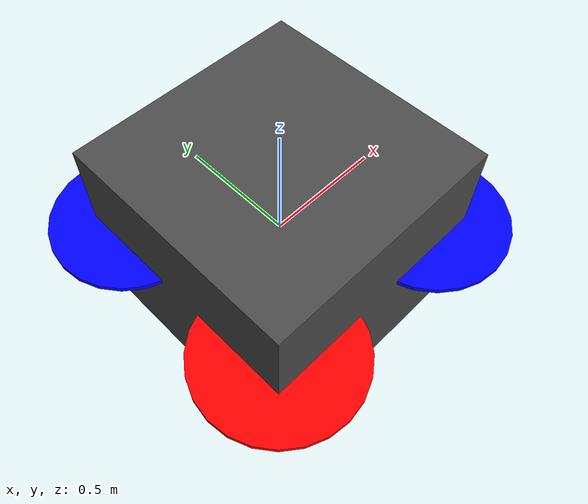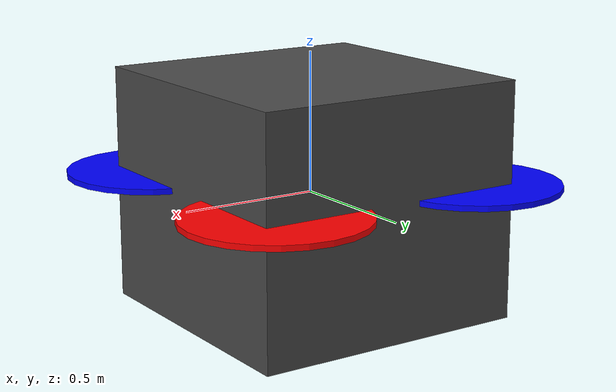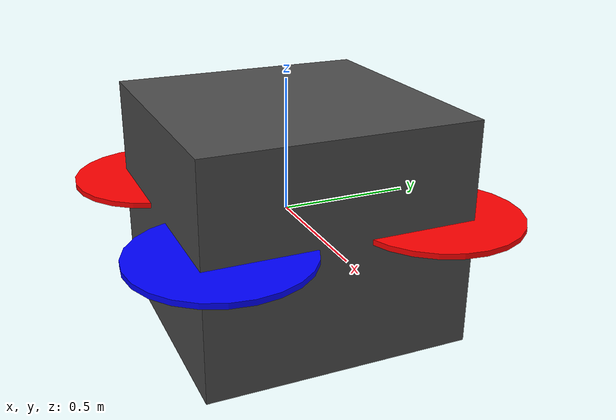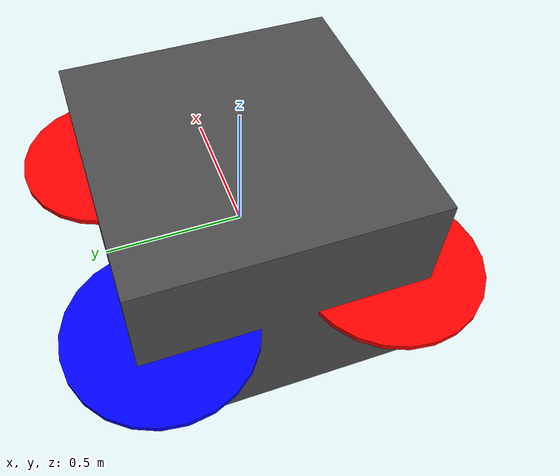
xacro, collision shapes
<?xml version="1.0" encoding="UTF-8"?>
<robot name="tarot" xmlns:xacro="http://www.ros.org/wiki/xacro">
  <xacro:include filename="$(find uav)/urdf/material.xacro"></xacro:include>
  <xacro:include filename="$(find uav)/urdf/gazebo.xacro"></xacro:include>
  <xacro:include filename="$(find uav)/urdf/rotor.xacro"></xacro:include>
  <link name="base_link">
    <inertial>
      <origin rpy="0 0 0" xyz="0 0 0"></origin>
      <mass value="1.5"></mass>
      <inertia ixx="0.0217" ixy="0" ixz="0" iyy="0.0295" iyz="0" izz="0.0414"></inertia>
    </inertial>
    <collision>
      <origin rpy="0 0 0" xyz="0 0 0"></origin>
      <geometry>
        <box size="1.0 1.0 0.85"></box>
      </geometry>
    </collision>
    <visual>
      <origin rpy="1.5708 0 1.5697" xyz="-0.008 -0.018 0.005"></origin>
      <geometry>
        <mesh filename="package://uav/meshes/collision/tarot.stl" scale="0.00188 0.00183 0.00183"></mesh>
      </geometry>
      <material name="dark_gray"></material>
    </visual>
  </link>
  <xacro:rotor number="1" rotation_type="ccw" xyz="0.40 -0.40 0.051"></xacro:rotor>
  <xacro:rotor number="2" rotation_type="ccw" xyz="-0.40 0.40 0.051"></xacro:rotor>
  <xacro:rotor number="3" rotation_type="cw" xyz="0.40 0.40 0.051"></xacro:rotor>
  <xacro:rotor number="4" rotation_type="cw" xyz="-0.40 -0.40 0.051"></xacro:rotor>
</robot>

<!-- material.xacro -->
<robot name="trot" xmlns:xacro="http://www.ros.org/wiki/xacro">
  <material name="dark_gray">
    <color rgba="0.3 0.3 0.3 1.0"></color>
  </material>
  <material name="red">
    <color rgba="1.0 0 0 1.0"></color>
  </material>
  <material name="blue">
    <color rgba="0 0 1.0 1.0"></color>
  </material>
</robot>

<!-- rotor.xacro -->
<robot xmlns:xacro="http://www.ros.org/wiki/xacro">
  <xacro:macro name="rotor" params="number xyz rotation_type">
    <link name="motor_${number}">
      <inertial>
        <origin rpy="0 0 0" xyz="0 0 0"></origin>
        <mass value="0.005"></mass>
        <inertia ixx="9.75e-07" ixy="0" ixz="0" iyy="0.000273104" iyz="0" izz="0.000274004"></inertia>
      </inertial>
      <collision>
        <origin rpy="0 0 0" xyz="0 0 0"></origin>
        <geometry>
          <cylinder length="0.02" radius="0.32"></cylinder>
        </geometry>
      </collision>
      <visual>
        <origin rpy="0 0 0" xyz="-0.368 ${0.362 if rotation_type == 'cw' else -0.362} -0.025"></origin>
        <geometry>
          <mesh filename="package://uav/meshes/collision/tarot_prop_${rotation_type}.stl" scale="2.5 2.5 1"></mesh>
        </geometry>
        <material name="${'blue' if rotation_type == 'ccw' else 'red'}"></material>
      </visual>
    </link>
    <joint name="motor_${number}_joint" type="continuous">
      <parent link="base_link"></parent>
      <child link="motor_${number}"></child>
      <origin rpy="0 0 0" xyz="${xyz}"></origin>
      <axis xyz="0 0 1"></axis>
      <dynamics damping="0" friction="0"></dynamics>
    </joint>
    <gazebo reference="motor_${number}">
      <plugin filename="ignition-gazebo-multicopter-motor-model-system" name="ignition::gazebo::systems::MulticopterMotorModel">
        <robotNamespace>tarot</robotNamespace>
        <jointName>motor_${number}_joint</jointName>
        <linkName>motor_${number}</linkName>
        <turningDirection>${rotation_type}</turningDirection>
        <timeConstantUp>0.0125</timeConstantUp>
        <timeConstantDown>0.025</timeConstantDown>
        <maxRotVelocity>1100</maxRotVelocity>
        <motorConstant>8.54858e-06</motorConstant>
        <momentConstant>0.06</momentConstant>
        <commandSubTopic>command/motor_speed</commandSubTopic>
        <motorNumber>${number}</motorNumber>
        <rotorDragCoefficient>0.000175</rotorDragCoefficient>
        <rollingMomentCoefficient>1e-06</rollingMomentCoefficient>
        <motorSpeedPubTopic>motor_speed/${number}</motorSpeedPubTopic>
        <rotorVelocitySlowdownSim>10</rotorVelocitySlowdownSim>
        <motorType>velocity</motorType>
      </plugin>
    </gazebo>
  </xacro:macro>
</robot>
